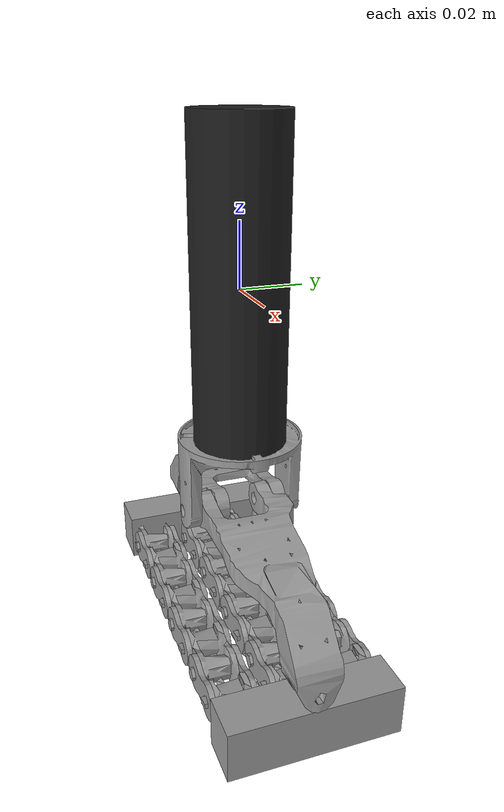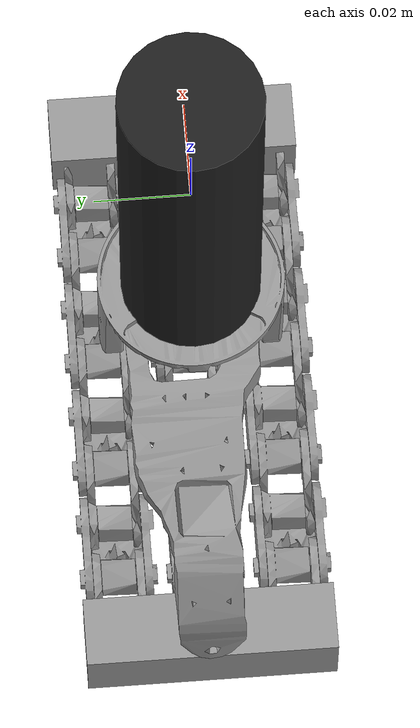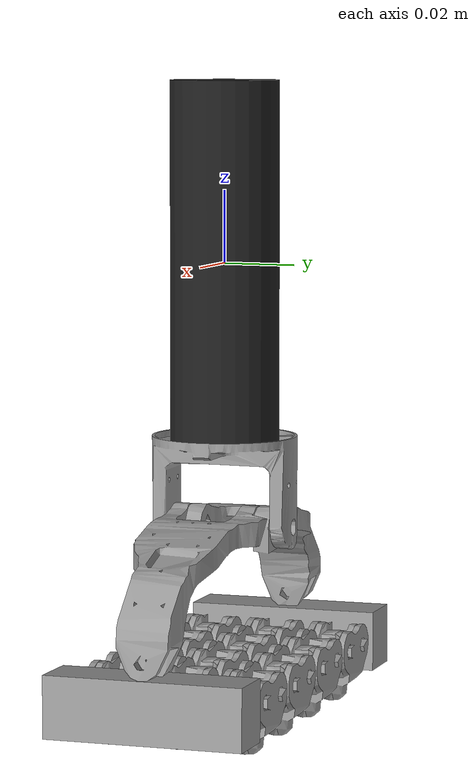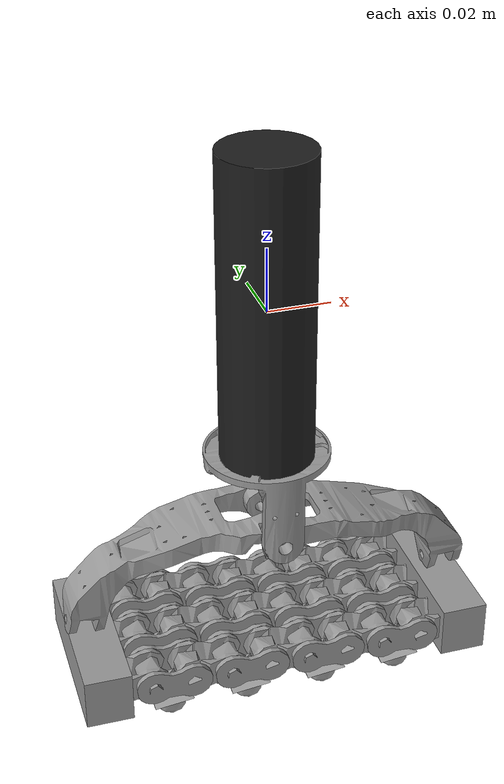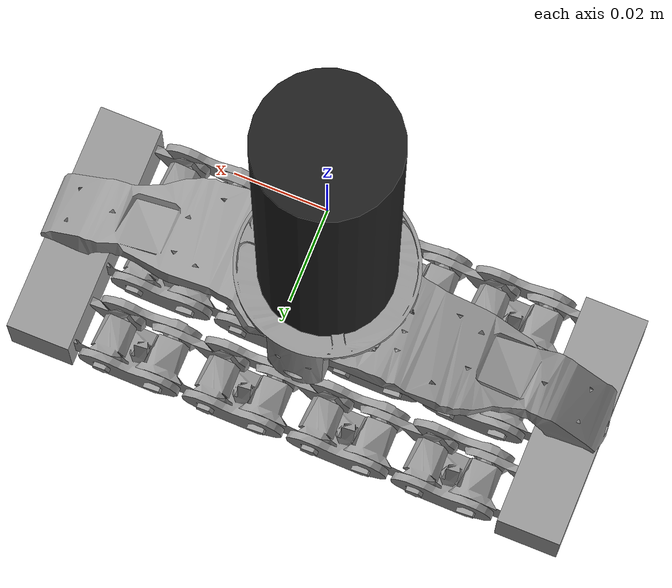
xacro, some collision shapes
<?xml version="1.0" encoding='utf-8'?>
<robot xmlns:xacro="http://www.ros.org/wiki/xacro" name="pisa_softfoot">

<!-- ARGS -->
<xacro:property name="leg_mass" value="0.02"/>

<!-- MODELS -->
<xacro:include filename="$(find softfoot_thing_description)/model/softfoot_thing.urdf.xacro"/>

<!-- LEG 1 -->
<link name="leg_link">
    <inertial>
        <mass value="${leg_mass}"/>
        <origin xyz="0 0 0" rpy="0 0 0"/>
        <inertia    ixx="${mm2tom2 * 1}" iyy="${mm2tom2 * 1}" izz="${mm2tom2 * 1}"
                    ixy="0" ixz="0" iyz="0"/>
        </inertial>
    <visual>
        <origin xyz="0 0 0" rpy="0 0 0"/>
        <geometry>
            <cylinder length="0.1" radius="0.015"/>
        </geometry>
        <material name="SoftFoot/Black"/>
    </visual>
    <collision>
        <origin xyz="0 0 0" rpy="0 0 0"/>
        <geometry>
            <cylinder length="0.1" radius="0.015"/>
        </geometry>
    </collision>
</link>

<gazebo reference="leg_link">
    <gravity>true</gravity>
    <material>Gazebo/Black</material>
</gazebo>

<!-- FOOT 1 -->
<xacro:softfoot_thing name="softfoot" parent="leg_link">
    <origin xyz="0 0 -0.05" rpy="0 0 0"/>
</xacro:softfoot_thing>

</robot>

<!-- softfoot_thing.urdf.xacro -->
<robot name="softfoot_thing" xmlns:xacro="http://www.ros.org/wiki/xacro">

    <!-- Properties -->
    <xacro:property name="const_pi" value="3.1415926535897931"/>
    <xacro:property name="ankle_mass" value="0.0181"/>
    <xacro:property name="arch_mass" value="0.0256"/>
    <xacro:property name="roll_mass" value="0.0177"/>
    <xacro:property name="velocity" value="100" />
    <xacro:property name="effort" value="100" />

    <xacro:property name="max_stiffness" value="10"/>
    <xacro:property name="min_stiffness" value="0"/>
    <xacro:property name="rate_stiffness" value="20"/>

    <!-- Gazebo and Transmission -->
    <xacro:include filename="$(find softfoot_thing_description)/model/softfoot_thing.gazebo.xacro"/>
    <xacro:include filename="$(find softfoot_thing_description)/model/softfoot_thing.transmission.xacro"/>

    <!-- Utilities -->
    <xacro:include filename="$(find softfoot_thing_description)/model/chain_thing.urdf.xacro"/>
    <xacro:include filename="$(find softfoot_thing_description)/model/softfoot_thing_inertia.xacro"/>
    <xacro:include filename="$(find softfoot_thing_description)/model/softfoot_thing_materials.xacro"/>

    <!-- URDF -->
    <xacro:macro name="softfoot_thing" params="parent name *origin">

        <!-- 0) Ankle base - fixed to parent. -->
        <joint name="${parent}_${name}_ankle_base_joint" type="fixed">
            <xacro:insert_block name="origin"/>
            <origin xyz="0 0 0" rpy="0 0 0"/>
            <parent link="${parent}"/>
            <child link="${name}_ankle_base_link"/>
        </joint>

        <link name="${name}_ankle_base_link">
            <inertial>
                <xacro:insert_block name="really_negligible_inertia"/>
            </inertial>
        </link>

        <!-- 1) Ankle of the foot - fixed to parent. -->
        <joint name="${name}_ankle_joint" type="fixed">
            <origin xyz="0 0 -0.022" rpy="0 0 0"/>
            <parent link="${name}_ankle_base_link"/>
            <child link="${name}_ankle_link"/>
        </joint>

        <link name="${name}_ankle_link">
            <inertial>
                <mass value="${ankle_mass}"/>
                <origin xyz="0 0 0.0154" rpy="0 0 0"/>
                <xacro:ankle_inertia/>
            </inertial>
            <visual>
                <origin xyz="0 0 0" rpy="0 0 0"/>
                <geometry>
                    <mesh filename="package://softfoot_thing_description/meshes/visual/ankle.stl"
                          scale=" .001 .001 .001"/>
                </geometry>
                <material name="SoftFoot/Grey"/>
            </visual>
            <collision>
                <origin xyz="0 0 0.02225" rpy="0 0 0"/>
                <geometry>
                    <cylinder length="0.0045" radius="0.02"/>
                </geometry>
            </collision>
            <collision>
                <origin xyz="0 0 0.019" rpy="0 0 0"/>
                <geometry>
                    <box size="0.0125 0.038 0.004"/>
                </geometry>
            </collision>
            <collision>
                <origin xyz="0 0.017 0.008" rpy="0 0 0"/>
                <geometry>
                    <box size="0.0125 0.004 0.028"/>
                </geometry>
            </collision>
            <collision>
                <origin xyz="0 -0.017 0.008" rpy="0 0 0"/>
                <geometry>
                    <box size="0.0125 0.004 0.028"/>
                </geometry>
            </collision>
        </link>

        <!-- 2) Front arch - joint along y-axis to pitch -->
        <joint name="${name}_front_arch_joint" type="revolute">
            <origin xyz="0 0 0" rpy="0 0 0"/>
            <axis xyz="0 1 0"/>
            <limit lower="${-30 * const_pi / 180}" upper="${30* const_pi / 180}" effort="${effort}" velocity="${velocity}"/>
            <dynamics friction="0.0001" damping="0.0001"/>
            <parent link="${name}_ankle_link"/>
            <child link="${name}_front_arch_link"/>
        </joint>

        <link name="${name}_front_arch_link">
            <inertial>
                <mass value="${arch_mass}"/>
                <origin xyz="0.0356 -0.0011 -0.0078" rpy="0 0 0"/>
                <xacro:front_arch_inertia/>
            </inertial>
            <visual>
                <origin xyz="0 0 0" rpy="0 0 0"/>
                <geometry>
                    <mesh filename="package://softfoot_thing_description/meshes/visual/front_arch_front.stl"
                          scale=" .001 .001 .001"/>
                </geometry>
                <material name="SoftFoot/Grey"/>
            </visual>
            <collision>
                <origin xyz="0.01 0 0" rpy="0 0 0"/>
                <geometry>
                    <box size="0.03 0.029 0.008"/>
                </geometry>
            </collision>
            <collision>
                <origin xyz="0.0365 0 -0.00375" rpy="0 0.3 0"/>
                <geometry>
                    <box size="0.0275 0.025 0.008"/>
                </geometry>
            </collision>
            <collision>
                <origin xyz="0.05525 0 -0.0142" rpy="0 0.75 0"/>
                <geometry>
                    <box size="0.021 0.021 0.009"/>
                </geometry>
            </collision>
            <collision>
                <origin xyz="0.0605 0 -0.025" rpy="0 1.57 0"/>
                <geometry>
                    <cylinder length="0.0125" radius="0.0075"/>
                </geometry>
            </collision>
        </link>

        <!-- 3) Back arch - joint along y-axis to pitch -->
        <joint name="${name}_back_arch_joint" type="revolute">
            <origin xyz="0 0 0" rpy="0 0 0"/>
            <axis xyz="0 -1 0"/>
            <limit lower="${-30 * const_pi / 180}" upper="${30 * const_pi / 180}" effort="${effort}" velocity="${velocity}"/>
            <dynamics friction="0.0001" damping="0.0001"/>
            <parent link="${name}_ankle_link"/>
            <child link="${name}_back_arch_link"/>
        </joint>

        <link name="${name}_back_arch_link">
            <inertial>
                <mass value="${arch_mass}"/>
                <origin xyz="-0.0356 0.0011 -0.0078" rpy="0 0 0"/>
                <xacro:back_arch_inertia/>
            </inertial>
            <visual>
                <origin xyz="0 0 0" rpy="0 0 0"/>
                <geometry>
                    <mesh filename="package://softfoot_thing_description/meshes/visual/front_arch_back.stl"
                          scale=" .001 .001 .001"/>
                </geometry>
                <material name="SoftFoot/Grey"/>
            </visual>
            <collision>
                <origin xyz="-0.01 0 0" rpy="0 0 0"/>
                <geometry>
                    <box size="0.03 0.029 0.008"/>
                </geometry>
            </collision>
            <collision>
                <origin xyz="-0.0365 0 -0.00375" rpy="0 -0.3 0"/>
                <geometry>
                    <box size="0.0275 0.025 0.008"/>
                </geometry>
            </collision>
            <collision>
                <origin xyz="-0.05525 0 -0.0142" rpy="0 -0.75 0"/>
                <geometry>
                    <box size="0.021 0.021 0.009"/>
                </geometry>
            </collision>
            <collision>
                <origin xyz="-0.0605 0 -0.025" rpy="0 -1.57 0"/>
                <geometry>
                    <cylinder length="0.0125" radius="0.0075"/>
                </geometry>
            </collision>
        </link>

        <!-- x) Roll driving joint - we suppose the roll joints move specularly -->
        <joint name="${name}_roll_joint" type="revolute">
            <origin xyz="0.058 0 -0.028" rpy="0 -0.1047 0"/>
            <axis xyz="1 0 0"/>
            <limit lower="${-45 * const_pi / 180}" upper="${45 * const_pi / 180}" effort="${effort}" velocity="${velocity}"/>
            <dynamics friction="0.01" damping="0.01"/>
            <parent link="${name}_front_arch_link"/>
            <child link="${name}_roll_link"/>
        </joint>

        <link name="${name}_roll_link">
            <inertial>
                <xacro:insert_block name="really_negligible_inertia"/>
            </inertial>
        </link>

        <!-- 4) Front roll - joint along x-axis to roll -->
        <joint name="${name}_front_roll_joint" type="revolute">
            <origin xyz="0.058 0 -0.028" rpy="0 -0.1047 0"/>
            <axis xyz="1 0 0"/>
            <limit lower="${-45 * const_pi / 180}" upper="${45 * const_pi / 180}" effort="${effort}" velocity="${velocity}"/>
            <dynamics friction="0.0001" damping="0.0001"/>
            <mimic joint="${name}_roll_joint" multiplier="1"/>
            <parent link="${name}_front_arch_link"/>
            <child link="${name}_front_roll_link"/>
        </joint>

        <link name="${name}_front_roll_link">
            <inertial>
                <mass value="${roll_mass}"/>
                <origin xyz="0.0010 0 -0.0112" rpy="0 0 0"/>
                <xacro:roll_link_inertia/>
            </inertial>
            <visual>
                <origin xyz="0 0 0" rpy="0 0 0"/>
                <geometry>
                    <mesh filename="package://softfoot_thing_description/meshes/visual/roll_link_v04.stl"
                          scale=" .001 .001 .001"/>
                </geometry>
                <material name="SoftFoot/Grey"/>
            </visual>
            <collision>
                <origin xyz="0 0 -0.0125" rpy="0 0.1 0"/>
                <geometry>
                    <box size="0.015 0.055 0.017"/>
                </geometry>
            </collision>
        </link>

        <!-- 4) Back roll - joint along x-axis to roll -->
        <joint name="${name}_back_roll_joint" type="revolute">
            <origin xyz="-0.058 0 -0.028" rpy="0 -0.1047 ${const_pi}"/>
            <axis xyz="1 0 0"/>
            <limit lower="${-45 * const_pi / 180}" upper="${45 * const_pi / 180}" effort="${effort}" velocity="${velocity}"/>
            <dynamics friction="0.0001" damping="0.0001"/>
            <mimic joint="${name}_roll_joint" multiplier="-1"/>
            <parent link="${name}_back_arch_link"/>
            <child link="${name}_back_roll_link"/>
        </joint>

        <link name="${name}_back_roll_link">
            <inertial>
                <mass value="${roll_mass}"/>
                <origin xyz="0.0010 0 -0.0112" rpy="0 0 0"/>
                <xacro:roll_link_inertia/>
            </inertial>
            <visual>
                <origin xyz="0 0 0" rpy="0 0 0"/>
                <geometry>
                    <mesh filename="package://softfoot_thing_description/meshes/visual/roll_link_v04.stl"
                          scale=" .001 .001 .001"/>
                </geometry>
                <material name="SoftFoot/Grey"/>
            </visual>
            <collision>
                <origin xyz="0 0 -0.0125" rpy="0 0.1 0"/>
                <geometry>
                    <box size="0.015 0.055 0.017"/>
                </geometry>
            </collision>
        </link>

        <!-- 4) Back roll - stiffness -->

        <!-- 5) Middle chain insertion point -->
        <joint name="${name}_middle_chain_insertion_joint" type="fixed">
            <origin xyz="-0.00209969 0 -0.0118454" rpy="${-(const_pi / 2) - 0.105} 0 ${-const_pi / 2}"/>
            <parent link="${name}_back_roll_link"/>
            <child link="${name}_middle_chain_insertion_link"/>
        </joint>

        <link name="${name}_middle_chain_insertion_link">
            <inertial>
                <xacro:insert_block name="really_negligible_inertia"/>
            </inertial>
        </link>

        <!-- 6) Middle chain - starting from front -->
        <xacro:chain_thing name="middle_chain" foot="${name}" parent="${name}_front_roll_link">
            <origin xyz="-0.00209969 0 -0.0118454" rpy="${-(const_pi / 2) + 0.1046328} 0 ${const_pi / 2}"/>
        </xacro:chain_thing>

        <!-- 7) Right chain - starting from front -->
        <xacro:chain_thing name="right_chain" foot="${name}" parent="${name}_front_roll_link">
            <origin xyz="-0.00209969 -0.0191500 -0.0118454" rpy="${-(const_pi / 2) + 0.1046328} 0 ${const_pi / 2}"/>
        </xacro:chain_thing>

        <!-- 8) Left chain - starting from front -->
        <xacro:chain_thing name="left_chain" foot="${name}" parent="${name}_front_roll_link">
            <origin xyz="-0.00209969 0.0191500 -0.0118454" rpy="${-(const_pi / 2) + 0.1046328} 0 ${const_pi / 2}"/>
        </xacro:chain_thing>

        <!-- Gazebo elements -->
        <xacro:softfoot_thing_gazebo name="${name}" left_chain_name="left_chain" middle_chain_name="middle_chain"
                                     right_chain_name="right_chain"/>
        <xacro:softfoot_thing_transmission name="${name}"/>

    </xacro:macro>

</robot>

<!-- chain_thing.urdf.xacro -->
<robot xmlns:xacro="http://www.ros.org/wiki/xacro">

    <!-- Properties -->
    <xacro:property name="const_pi" value="3.1415926535897931"/>
    <xacro:property name="inner_chain_mass" value="0.0082"/>
    <xacro:property name="outer_chain_mass" value="0.0156"/>
    <xacro:property name="velocity" value="100"/>
    <xacro:property name="effort" value="100"/>

    <!-- Utilities -->
    <xacro:include filename="$(find softfoot_thing_description)/model/chain_thing_inertia.xacro"/>
    <xacro:include filename="$(find softfoot_thing_description)/model/chain_thing_materials.xacro"/>

    <!-- URDF -->
    <xacro:macro name="chain_thing" params="parent name foot *origin">

        <!-- TODO: Rotation axes now around x, it might be better to change meshes to revolute around y -->

        <!-- 0) Chain 1 - joint along y-axis to pitch -->
        <joint name="${foot}_${name}_1_joint" type="revolute">
            <xacro:insert_block name="origin"/>
            <origin xyz="0 0 0" rpy="0 0 0"/>
            <axis xyz="1 0 0"/>
            <limit lower="${-45 * const_pi / 180}" upper="${45 * const_pi / 180}" effort="${effort}"
                   velocity="${velocity}"/>
            <dynamics friction="0.0001" damping="0.0001"/>
            <parent link="${parent}"/>
            <child link="${foot}_${name}_1_link"/>
        </joint>

        <link name="${foot}_${name}_1_link">
            <inertial>
                <mass value="${inner_chain_mass}"/>
                <origin xyz="0 0 0" rpy="0 0 0"/>
                <xacro:inner_chain_inertia/>
            </inertial>
            <visual>
                <origin xyz="0 0 0" rpy="0 0 0"/>
                <geometry>
                    <mesh filename="package://softfoot_thing_description/meshes/visual/inner_chain.stl"
                          scale=" .001 .001 .001"/>
                </geometry>
                <material name="SoftChain/Grey"/>
            </visual>
            <collision>
                <origin xyz="0 0 0.00625" rpy="0 0 0"/>
                <geometry>
                    <box size="0.009 0.009 0.015"/>
                </geometry>
            </collision>
        </link>

        <!-- 1) Chain 2 - joint along y-axis to pitch -->
        <joint name="${foot}_${name}_2_joint" type="revolute">
            <origin xyz="0 0 0.0127" rpy="0 0 0"/>
            <axis xyz="1 0 0"/>
            <limit lower="${-45 * const_pi / 180}" upper="${45 * const_pi / 180}" effort="${effort}"
                   velocity="${velocity}"/>
            <dynamics friction="0.0001" damping="0.0001"/>
            <parent link="${foot}_${name}_1_link"/>
            <child link="${foot}_${name}_2_link"/>
        </joint>

        <link name="${foot}_${name}_2_link">
            <inertial>
                <mass value="${outer_chain_mass}"/>
                <origin xyz="0 0 0" rpy="0 0 0"/>
                <xacro:outer_chain_inertia/>
            </inertial>
            <visual>
                <origin xyz="0 0 0" rpy="0 0 0"/>
                <geometry>
                    <mesh filename="package://softfoot_thing_description/meshes/visual/outer_chain.stl"
                          scale=" .001 .001 .001"/>
                </geometry>
                <material name="SoftChain/Grey"/>
            </visual>
            <collision>
                <origin xyz="0 0.0015 0.00625" rpy="1.57079632679 0 0"/>
                <geometry>
                    <cylinder length="0.018" radius="0.005"/>
                </geometry>
            </collision>
            <collision>
                <origin xyz="0 0.0105 0.00625" rpy="0 0 0"/>
                <geometry>
                    <sphere radius="0.005"/>
                </geometry>
            </collision>
        </link>

        <!-- 2) Chain 3 - joint along y-axis to pitch -->
        <joint name="${foot}_${name}_3_joint" type="revolute">
            <origin xyz="0 0 0.0127" rpy="0 0 0"/>
            <axis xyz="1 0 0"/>
            <limit lower="${-45 * const_pi / 180}" upper="${45 * const_pi / 180}" effort="${effort}"
                   velocity="${velocity}"/>
            <dynamics friction="0.0001" damping="0.0001"/>
            <parent link="${foot}_${name}_2_link"/>
            <child link="${foot}_${name}_3_link"/>
        </joint>

        <link name="${foot}_${name}_3_link">
            <inertial>
                <mass value="${inner_chain_mass}"/>
                <origin xyz="0 0 0" rpy="0 0 0"/>
                <xacro:inner_chain_inertia/>
            </inertial>
            <visual>
                <origin xyz="0 0 0" rpy="0 0 0"/>
                <geometry>
                    <mesh filename="package://softfoot_thing_description/meshes/visual/inner_chain.stl"
                          scale=" .001 .001 .001"/>
                </geometry>
                <material name="SoftChain/Grey"/>
            </visual>
            <collision>
                <origin xyz="0 0 0.00625" rpy="0 0 0"/>
                <geometry>
                    <box size="0.009 0.009 0.015"/>
                </geometry>
            </collision>
        </link>

        <!-- 3) Chain 4 - joint along y-axis to pitch -->
        <joint name="${foot}_${name}_4_joint" type="revolute">
            <origin xyz="0 0 0.0127" rpy="0 0 0"/>
            <axis xyz="1 0 0"/>
            <limit lower="${-45 * const_pi / 180}" upper="${45 * const_pi / 180}" effort="${effort}"
                   velocity="${velocity}"/>
            <dynamics friction="0.0001" damping="0.0001"/>
            <parent link="${foot}_${name}_3_link"/>
            <child link="${foot}_${name}_4_link"/>
        </joint>

        <link name="${foot}_${name}_4_link">
            <inertial>
                <mass value="${outer_chain_mass}"/>
                <origin xyz="0 0 0" rpy="0 0 0"/>
                <xacro:outer_chain_inertia/>
            </inertial>
            <visual>
                <origin xyz="0 0 0" rpy="0 0 0"/>
                <geometry>
                    <mesh filename="package://softfoot_thing_description/meshes/visual/outer_chain.stl"
                          scale=" .001 .001 .001"/>
                </geometry>
                <material name="SoftChain/Grey"/>
            </visual>
            <collision>
                <origin xyz="0 0.0015 0.00625" rpy="1.57079632679 0 0"/>
                <geometry>
                    <cylinder length="0.018" radius="0.005"/>
                </geometry>
            </collision>
            <collision>
                <origin xyz="0 0.0105 0.00625" rpy="0 0 0"/>
                <geometry>
                    <sphere radius="0.005"/>
                </geometry>
            </collision>
        </link>

        <!-- 4) Chain 5 - joint along y-axis to pitch -->
        <joint name="${foot}_${name}_5_joint" type="revolute">
            <origin xyz="0 0 0.0127" rpy="0 0 0"/>
            <axis xyz="1 0 0"/>
            <limit lower="${-45 * const_pi / 180}" upper="${45 * const_pi / 180}" effort="${effort}"
                   velocity="${velocity}"/>
            <dynamics friction="0.0001" damping="0.0001"/>
            <parent link="${foot}_${name}_4_link"/>
            <child link="${foot}_${name}_5_link"/>
        </joint>

        <link name="${foot}_${name}_5_link">
            <inertial>
                <mass value="${inner_chain_mass}"/>
                <origin xyz="0 0 0" rpy="0 0 0"/>
                <xacro:inner_chain_inertia/>
            </inertial>
            <visual>
                <origin xyz="0 0 0" rpy="0 0 0"/>
                <geometry>
                    <mesh filename="package://softfoot_thing_description/meshes/visual/inner_chain.stl"
                          scale=" .001 .001 .001"/>
                </geometry>
                <material name="SoftChain/Grey"/>
            </visual>
            <collision>
                <origin xyz="0 0 0.00625" rpy="0 0 0"/>
                <geometry>
                    <box size="0.009 0.009 0.015"/>
                </geometry>
            </collision>
        </link>

        <!-- 5) Chain 6 - joint along y-axis to pitch -->
        <joint name="${foot}_${name}_6_joint" type="revolute">
            <origin xyz="0 0 0.0127" rpy="0 0 0"/>
            <axis xyz="1 0 0"/>
            <limit lower="${-45 * const_pi / 180}" upper="${45 * const_pi / 180}" effort="${effort}"
                   velocity="${velocity}"/>
            <dynamics friction="0.0001" damping="0.0001"/>
            <parent link="${foot}_${name}_5_link"/>
            <child link="${foot}_${name}_6_link"/>
        </joint>

        <link name="${foot}_${name}_6_link">
            <inertial>
                <mass value="${outer_chain_mass}"/>
                <origin xyz="0 0 0" rpy="0 0 0"/>
                <xacro:outer_chain_inertia/>
            </inertial>
            <visual>
                <origin xyz="0 0 0" rpy="0 0 0"/>
                <geometry>
                    <mesh filename="package://softfoot_thing_description/meshes/visual/outer_chain.stl"
                          scale=" .001 .001 .001"/>
                </geometry>
                <material name="SoftChain/Grey"/>
            </visual>
            <collision>
                <origin xyz="0 0.0015 0.00625" rpy="1.57079632679 0 0"/>
                <geometry>
                    <cylinder length="0.018" radius="0.005"/>
                </geometry>
            </collision>
            <collision>
                <origin xyz="0 0.0105 0.00625" rpy="0 0 0"/>
                <geometry>
                    <sphere radius="0.005"/>
                </geometry>
            </collision>
        </link>

        <!-- 6) Chain 7 - joint along y-axis to pitch -->
        <joint name="${foot}_${name}_7_joint" type="revolute">
            <origin xyz="0 0 0.0127" rpy="0 0 0"/>
            <axis xyz="1 0 0"/>
            <limit lower="${-45 * const_pi / 180}" upper="${45 * const_pi / 180}" effort="${effort}"
                   velocity="${velocity}"/>
            <dynamics friction="0.0001" damping="0.0001"/>
            <parent link="${foot}_${name}_6_link"/>
            <child link="${foot}_${name}_7_link"/>
        </joint>

        <link name="${foot}_${name}_7_link">
            <inertial>
                <mass value="${inner_chain_mass}"/>
                <origin xyz="0 0 0" rpy="0 0 0"/>
                <xacro:inner_chain_inertia/>
            </inertial>
            <visual>
                <origin xyz="0 0 0" rpy="0 0 0"/>
                <geometry>
                    <mesh filename="package://softfoot_thing_description/meshes/visual/inner_chain.stl"
                          scale=" .001 .001 .001"/>
                </geometry>
                <material name="SoftChain/Grey"/>
            </visual>
            <collision>
                <origin xyz="0 0 0.00625" rpy="0 0 0"/>
                <geometry>
                    <box size="0.009 0.009 0.015"/>
                </geometry>
            </collision>
        </link>

        <!-- 7) Chain 8 - joint along y-axis to pitch -->
        <joint name="${foot}_${name}_8_joint" type="revolute">
            <origin xyz="0 0 0.0127" rpy="0 0 0"/>
            <axis xyz="1 0 0"/>
            <limit lower="${-45 * const_pi / 180}" upper="${45 * const_pi / 180}" effort="${effort}"
                   velocity="${velocity}"/>
            <dynamics friction="0.0001" damping="0.0001"/>
            <parent link="${foot}_${name}_7_link"/>
            <child link="${foot}_${name}_8_link"/>
        </joint>

        <link name="${foot}_${name}_8_link">
            <inertial>
                <mass value="${outer_chain_mass}"/>
                <origin xyz="0 0 0" rpy="0 0 0"/>
                <xacro:outer_chain_inertia/>
            </inertial>
            <visual>
                <origin xyz="0 0 0" rpy="0 0 0"/>
                <geometry>
                    <mesh filename="package://softfoot_thing_description/meshes/visual/outer_chain.stl"
                          scale=" .001 .001 .001"/>
                </geometry>
                <material name="SoftChain/Grey"/>
            </visual>
            <collision>
                <origin xyz="0 0.0015 0.00625" rpy="1.57079632679 0 0"/>
                <geometry>
                    <cylinder length="0.018" radius="0.005"/>
                </geometry>
            </collision>
            <collision>
                <origin xyz="0 0.0105 0.00625" rpy="0 0 0"/>
                <geometry>
                    <sphere radius="0.005"/>
                </geometry>
            </collision>
        </link>

        <!-- 8) Chain 9 - joint along y-axis to pitch -->
        <joint name="${foot}_${name}_9_joint" type="revolute">
            <origin xyz="0 0 0.0127" rpy="0 0 0"/>
            <axis xyz="1 0 0"/>
            <limit lower="${-45 * const_pi / 180}" upper="${45 * const_pi / 180}" effort="${effort}"
                   velocity="${velocity}"/>
            <dynamics friction="0.0001" damping="0.0001"/>
            <parent link="${foot}_${name}_8_link"/>
            <child link="${foot}_${name}_9_link"/>
        </joint>

        <link name="${foot}_${name}_9_link">
            <inertial>
                <mass value="${inner_chain_mass}"/>
                <origin xyz="0 0 0" rpy="0 0 0"/>
                <xacro:inner_chain_inertia/>
            </inertial>
            <visual>
                <origin xyz="0 0 0" rpy="0 0 0"/>
                <geometry>
                    <mesh filename="package://softfoot_thing_description/meshes/visual/inner_chain.stl"
                          scale=" .001 .001 .001"/>
                </geometry>
                <material name="SoftChain/Grey"/>
            </visual>
            <collision>
                <origin xyz="0 0 0.00625" rpy="0 0 0"/>
                <geometry>
                    <box size="0.009 0.009 0.015"/>
                </geometry>
            </collision>
        </link>

        <!-- 9) Chain Tip - fixed joint -->
        <joint name="${foot}_${name}_tip_joint" type="fixed">
            <origin xyz="0 0 0.0127" rpy="0 0 0"/>
            <parent link="${foot}_${name}_9_link"/>
            <child link="${foot}_${name}_tip_link"/>
        </joint>

        <link name="${foot}_${name}_tip_link">
            <inertial>
                <xacro:insert_block name="really_negligible_inertia"/>
            </inertial>
        </link>

    </xacro:macro>

</robot>

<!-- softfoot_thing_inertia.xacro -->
<robot xmlns:xacro="http://www.ros.org/wiki/xacro">

  <xacro:property name="negligible_mass" value="0.1"/>
  <xacro:property name="really_negligible_mass" value="0.00001"/>
  <xacro:property name="mm2tom2" value="0.000001"/>

  <!-- INERTIA MATRICES FOR LINKS (wrt frames in urdf inertial) -->

  <!-- Ankle -->
  <xacro:macro name="ankle_inertia">
    <inertia ixx="${mm2tom2 * 4.4972}" iyy="${mm2tom2 * 1.8785}" izz="${mm2tom2 * 1.0468}"
             ixy="${mm2tom2 * -0.0012}" ixz="${mm2tom2 * -0.0027}" iyz="${mm2tom2 * 0.0005}"/>
  </xacro:macro>

  <!-- Front arch -->
  <xacro:macro name="front_arch_inertia">
    <inertia ixx="${mm2tom2 * 3.1301}" iyy="${mm2tom2 * 12.3897}" izz="${mm2tom2 * 11.8654}"
             ixy="${mm2tom2 * -0.3627}" ixz="${mm2tom2 * 3.6816}" iyz="${mm2tom2 * 0.1283}"/>
  </xacro:macro>

  <!-- Back arch -->
  <xacro:macro name="back_arch_inertia">
    <inertia ixx="${mm2tom2 * 3.1301}" iyy="${mm2tom2 * 12.3897}" izz="${mm2tom2 * 11.8654}"
             ixy="${mm2tom2 * -0.3627}" ixz="${mm2tom2 * -3.6816}" iyz="${mm2tom2 * -0.1283}"/>
  </xacro:macro>

  <!-- Roll link -->
  <xacro:macro name="roll_link_inertia">
    <inertia ixx="${mm2tom2 * 3.6156}" iyy="${mm2tom2 * 0.9073}" izz="${mm2tom2 * 3.2659}"
             ixy="${mm2tom2 * 0.0000}" ixz="${mm2tom2 * -0.1588}" iyz="${mm2tom2 * 0.0000}"/>
  </xacro:macro>

  <!-- Simple cuboid -->
  <xacro:macro name="cuboid_inertia_def" params="width height length mass">
    <inertia ixx="${mass * (height * height + length * length) / 12}"
             iyy="${mass * (width * width + length * length) / 12}"
             izz="${mass * (width * width + height * height) / 12}"
             ixy="0" iyz="0" ixz="0"/>
  </xacro:macro>

  <!-- Simple cylinder -->
  <xacro:macro name="cylinder_inertia_def" params="radius length mass">
    <inertia ixx="${mass * (3 * radius * radius + length * length) / 12}"
             iyy="${mass * radius* radius / 2}"
             izz="${mass * (3 * radius * radius + length * length) / 12}"
             ixy="0" iyz="0" ixz="0"/>
  </xacro:macro>

  <!-- Negligible inertia for simulation -->
  <xacro:property name="negligible_inertia">
      <origin xyz="0 0 0"/>
      <mass value="${negligible_mass}"/>
      <inertia  ixx="${mm2tom2 * 0.0001}" iyy="${mm2tom2 * 0.0001}" izz="${mm2tom2 * 0.0001}"
                ixy="0.0" ixz="0.0" iyz="0.0"/>
  </xacro:property>

<xacro:property name="really_negligible_inertia">
    <origin xyz="0 0 0"/>
    <mass value="${really_negligible_mass}"/>
    <inertia  ixx="${mm2tom2 * 0.00001}" iyy="${mm2tom2 * 0.00001}" izz="${mm2tom2 * 0.00001}"
              ixy="0.0" ixz="0.0" iyz="0.0"/>
  </xacro:property>

</robot>
